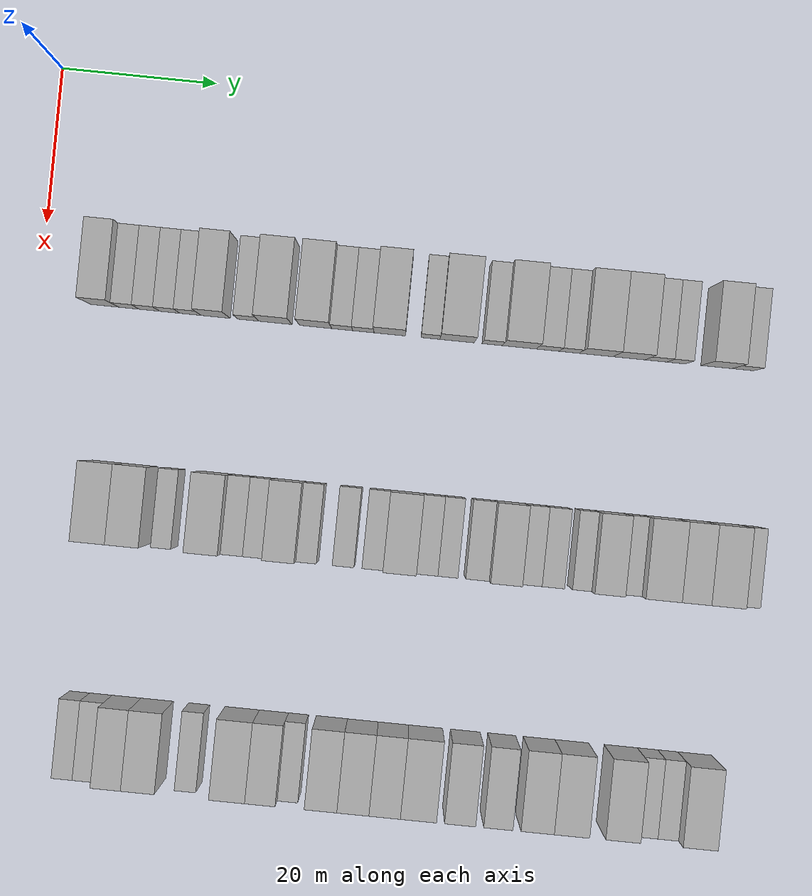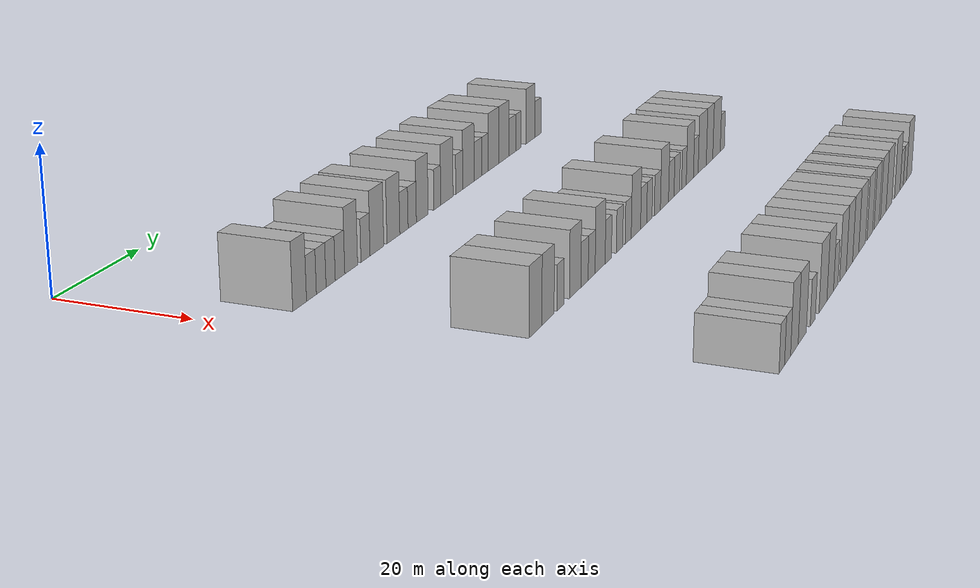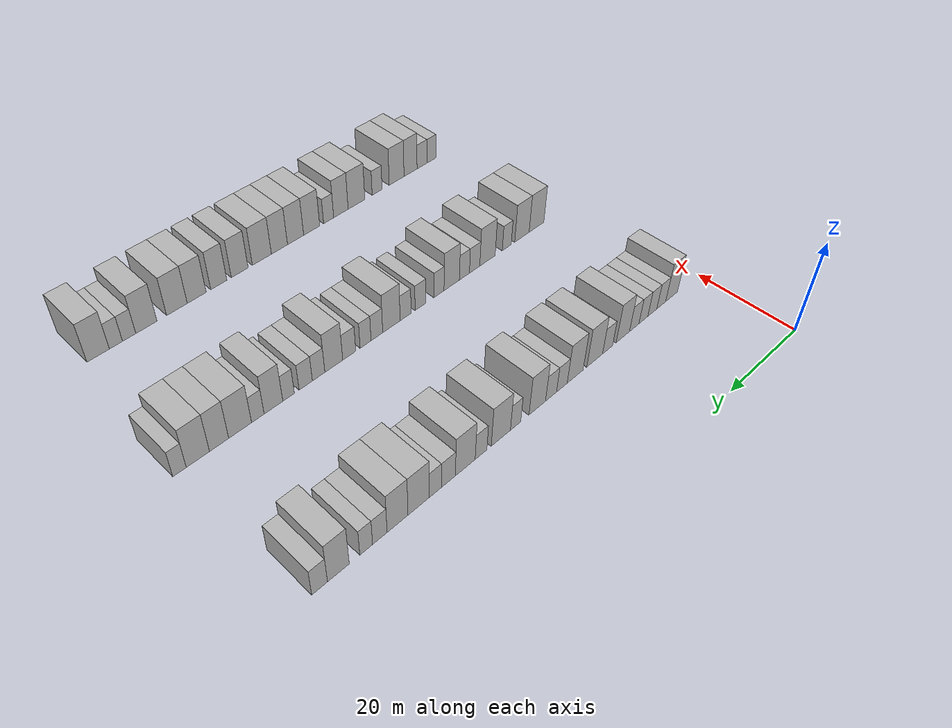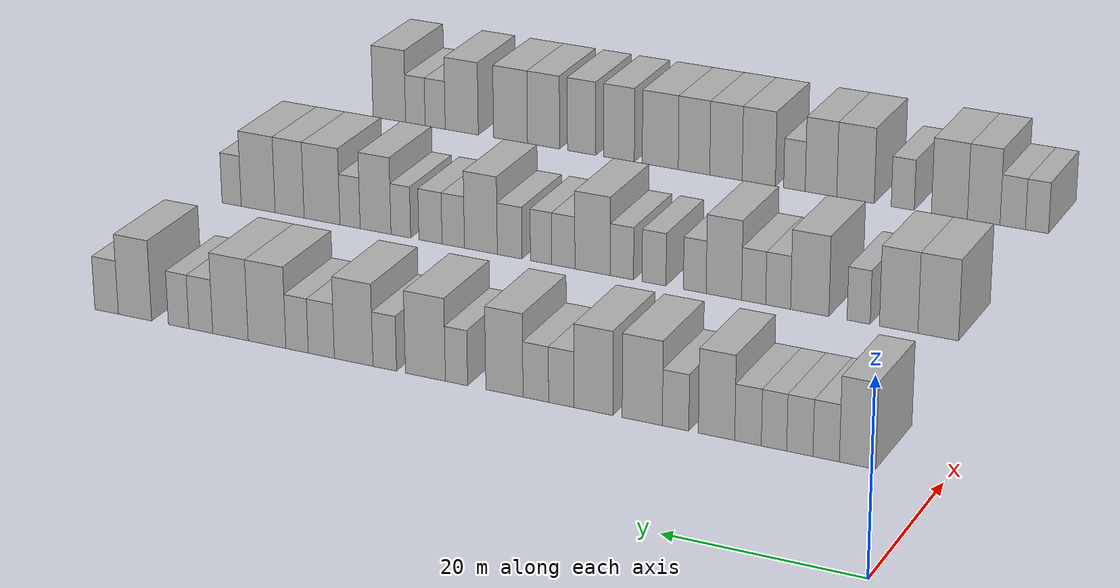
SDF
<sdf version="1.6">
 <world name="default">
  <model name="building_68">
   <static>1</static>
   <pose>25.0000 8.5379 0 0.000000 0.000000 0.000000</pose>
   <link name="link">
    <pose>0 0 4.50 0 0 0</pose>
    <collision name="collision"><geometry><box><size>10.0000 3.6507 9.0000</size></box></geometry></collision>
    <visual name="visual">
     <cast_shadows>0</cast_shadows>
     <geometry><box><size>10.0000 3.6507 9.0000</size></box></geometry>
     <material>
      <script>
       <uri>model://HANNAS_wall/materials/scripts</uri>
       <uri>model://HANNAS_wall/materials/textures</uri>
       <name>vrc/HANNAS_wall</name>
      </script>
     </material>
    </visual>
   </link>
  </model>
  <model name="building_69">
   <static>1</static>
   <pose>25.0000 11.6974 0 0.000000 0.000000 0.000000</pose>
   <link name="link">
    <pose>0 0 3.00 0 0 0</pose>
    <collision name="collision"><geometry><box><size>10.0000 2.6684 6.0000</size></box></geometry></collision>
    <visual name="visual">
     <cast_shadows>0</cast_shadows>
     <geometry><box><size>10.0000 2.6684 6.0000</size></box></geometry>
     <material>
      <script>
       <uri>model://HANNAS_wall/materials/scripts</uri>
       <uri>model://HANNAS_wall/materials/textures</uri>
       <name>vrc/HANNAS_wall</name>
      </script>
     </material>
    </visual>
   </link>
  </model>
  <model name="building_70">
   <static>1</static>
   <pose>25.0000 14.3689 0 0.000000 0.000000 0.000000</pose>
   <link name="link">
    <pose>0 0 3.00 0 0 0</pose>
    <collision name="collision"><geometry><box><size>10.0000 2.6747 6.0000</size></box></geometry></collision>
    <visual name="visual">
     <cast_shadows>0</cast_shadows>
     <geometry><box><size>10.0000 2.6747 6.0000</size></box></geometry>
     <material>
      <script>
       <uri>model://HANNAS_wall/materials/scripts</uri>
       <uri>model://HANNAS_wall/materials/textures</uri>
       <name>vrc/HANNAS_wall</name>
      </script>
     </material>
    </visual>
   </link>
  </model>
  <model name="building_71">
   <static>1</static>
   <pose>25.0000 17.0073 0 0.000000 0.000000 0.000000</pose>
   <link name="link">
    <pose>0 0 3.00 0 0 0</pose>
    <collision name="collision"><geometry><box><size>10.0000 2.6021 6.0000</size></box></geometry></collision>
    <visual name="visual">
     <cast_shadows>0</cast_shadows>
     <geometry><box><size>10.0000 2.6021 6.0000</size></box></geometry>
     <material>
      <script>
       <uri>model://HANNAS_wall/materials/scripts</uri>
       <uri>model://HANNAS_wall/materials/textures</uri>
       <name>vrc/HANNAS_wall</name>
      </script>
     </material>
    </visual>
   </link>
  </model>
  <model name="building_72">
   <static>1</static>
   <pose>25.0000 19.6736 0 0.000000 0.000000 0.000000</pose>
   <link name="link">
    <pose>0 0 3.00 0 0 0</pose>
    <collision name="collision"><geometry><box><size>10.0000 2.7305 6.0000</size></box></geometry></collision>
    <visual name="visual">
     <cast_shadows>0</cast_shadows>
     <geometry><box><size>10.0000 2.7305 6.0000</size></box></geometry>
     <material>
      <script>
       <uri>model://HANNAS_wall/materials/scripts</uri>
       <uri>model://HANNAS_wall/materials/textures</uri>
       <name>vrc/HANNAS_wall</name>
      </script>
     </material>
    </visual>
   </link>
  </model>
  <model name="building_73">
   <static>1</static>
   <pose>25.0000 22.9234 0 0.000000 0.000000 0.000000</pose>
   <link name="link">
    <pose>0 0 4.50 0 0 0</pose>
    <collision name="collision"><geometry><box><size>10.0000 3.7691 9.0000</size></box></geometry></collision>
    <visual name="visual">
     <cast_shadows>0</cast_shadows>
     <geometry><box><size>10.0000 3.7691 9.0000</size></box></geometry>
     <material>
      <script>
       <uri>model://HANNAS_wall/materials/scripts</uri>
       <uri>model://HANNAS_wall/materials/textures</uri>
       <name>vrc/HANNAS_wall</name>
      </script>
     </material>
    </visual>
   </link>
  </model>
  <model name="building_74">
   <static>1</static>
   <pose>25.0000 27.1916 0 0.000000 0.000000 0.000000</pose>
   <link name="link">
    <pose>0 0 3.00 0 0 0</pose>
    <collision name="collision"><geometry><box><size>10.0000 2.7673 6.0000</size></box></geometry></collision>
    <visual name="visual">
     <cast_shadows>0</cast_shadows>
     <geometry><box><size>10.0000 2.7673 6.0000</size></box></geometry>
     <material>
      <script>
       <uri>model://HANNAS_wall/materials/scripts</uri>
       <uri>model://HANNAS_wall/materials/textures</uri>
       <name>vrc/HANNAS_wall</name>
      </script>
     </material>
    </visual>
   </link>
  </model>
  <model name="building_75">
   <static>1</static>
   <pose>25.0000 30.7077 0 0.000000 0.000000 0.000000</pose>
   <link name="link">
    <pose>0 0 4.50 0 0 0</pose>
    <collision name="collision"><geometry><box><size>10.0000 4.2648 9.0000</size></box></geometry></collision>
    <visual name="visual">
     <cast_shadows>0</cast_shadows>
     <geometry><box><size>10.0000 4.2648 9.0000</size></box></geometry>
     <material>
      <script>
       <uri>model://HANNAS_wall/materials/scripts</uri>
       <uri>model://HANNAS_wall/materials/textures</uri>
       <name>vrc/HANNAS_wall</name>
      </script>
     </material>
    </visual>
   </link>
  </model>
  <model name="building_76">
   <static>1</static>
   <pose>25.0000 35.9200 0 0.000000 0.000000 0.000000</pose>
   <link name="link">
    <pose>0 0 4.50 0 0 0</pose>
    <collision name="collision"><geometry><box><size>10.0000 4.1600 9.0000</size></box></geometry></collision>
    <visual name="visual">
     <cast_shadows>0</cast_shadows>
     <geometry><box><size>10.0000 4.1600 9.0000</size></box></geometry>
     <material>
      <script>
       <uri>model://HANNAS_wall/materials/scripts</uri>
       <uri>model://HANNAS_wall/materials/textures</uri>
       <name>vrc/HANNAS_wall</name>
      </script>
     </material>
    </visual>
   </link>
  </model>
  <model name="building_77">
   <static>1</static>
   <pose>25.0000 39.3635 0 0.000000 0.000000 0.000000</pose>
   <link name="link">
    <pose>0 0 3.00 0 0 0</pose>
    <collision name="collision"><geometry><box><size>10.0000 2.7269 6.0000</size></box></geometry></collision>
    <visual name="visual">
     <cast_shadows>0</cast_shadows>
     <geometry><box><size>10.0000 2.7269 6.0000</size></box></geometry>
     <material>
      <script>
       <uri>model://HANNAS_wall/materials/scripts</uri>
       <uri>model://HANNAS_wall/materials/textures</uri>
       <name>vrc/HANNAS_wall</name>
      </script>
     </material>
    </visual>
   </link>
  </model>
  <model name="building_78">
   <static>1</static>
   <pose>25.0000 42.1148 0 0.000000 0.000000 0.000000</pose>
   <link name="link">
    <pose>0 0 3.00 0 0 0</pose>
    <collision name="collision"><geometry><box><size>10.0000 2.7756 6.0000</size></box></geometry></collision>
    <visual name="visual">
     <cast_shadows>0</cast_shadows>
     <geometry><box><size>10.0000 2.7756 6.0000</size></box></geometry>
     <material>
      <script>
       <uri>model://HANNAS_wall/materials/scripts</uri>
       <uri>model://HANNAS_wall/materials/textures</uri>
       <name>vrc/HANNAS_wall</name>
      </script>
     </material>
    </visual>
   </link>
  </model>
  <model name="building_79">
   <static>1</static>
   <pose>25.0000 45.5423 0 0.000000 0.000000 0.000000</pose>
   <link name="link">
    <pose>0 0 4.50 0 0 0</pose>
    <collision name="collision"><geometry><box><size>10.0000 4.0793 9.0000</size></box></geometry></collision>
    <visual name="visual">
     <cast_shadows>0</cast_shadows>
     <geometry><box><size>10.0000 4.0793 9.0000</size></box></geometry>
     <material>
      <script>
       <uri>model://HANNAS_wall/materials/scripts</uri>
       <uri>model://HANNAS_wall/materials/textures</uri>
       <name>vrc/HANNAS_wall</name>
      </script>
     </material>
    </visual>
   </link>
  </model>
  <model name="building_80">
   <static>1</static>
   <pose>25.0000 50.8127 0 0.000000 0.000000 0.000000</pose>
   <link name="link">
    <pose>0 0 3.00 0 0 0</pose>
    <collision name="collision"><geometry><box><size>10.0000 2.4616 6.0000</size></box></geometry></collision>
    <visual name="visual">
     <cast_shadows>0</cast_shadows>
     <geometry><box><size>10.0000 2.4616 6.0000</size></box></geometry>
     <material>
      <script>
       <uri>model://HANNAS_wall/materials/scripts</uri>
       <uri>model://HANNAS_wall/materials/textures</uri>
       <name>vrc/HANNAS_wall</name>
      </script>
     </material>
    </visual>
   </link>
  </model>
  <model name="building_81">
   <static>1</static>
   <pose>25.0000 54.2745 0 0.000000 0.000000 0.000000</pose>
   <link name="link">
    <pose>0 0 4.50 0 0 0</pose>
    <collision name="collision"><geometry><box><size>10.0000 4.4619 9.0000</size></box></geometry></collision>
    <visual name="visual">
     <cast_shadows>0</cast_shadows>
     <geometry><box><size>10.0000 4.4619 9.0000</size></box></geometry>
     <material>
      <script>
       <uri>model://HANNAS_wall/materials/scripts</uri>
       <uri>model://HANNAS_wall/materials/textures</uri>
       <name>vrc/HANNAS_wall</name>
      </script>
     </material>
    </visual>
   </link>
  </model>
  <model name="building_82">
   <static>1</static>
   <pose>25.0000 58.8342 0 0.000000 0.000000 0.000000</pose>
   <link name="link">
    <pose>0 0 3.00 0 0 0</pose>
    <collision name="collision"><geometry><box><size>10.0000 2.6576 6.0000</size></box></geometry></collision>
    <visual name="visual">
     <cast_shadows>0</cast_shadows>
     <geometry><box><size>10.0000 2.6576 6.0000</size></box></geometry>
     <material>
      <script>
       <uri>model://HANNAS_wall/materials/scripts</uri>
       <uri>model://HANNAS_wall/materials/textures</uri>
       <name>vrc/HANNAS_wall</name>
      </script>
     </material>
    </visual>
   </link>
  </model>
  <model name="building_83">
   <static>1</static>
   <pose>25.0000 62.3588 0 0.000000 0.000000 0.000000</pose>
   <link name="link">
    <pose>0 0 4.50 0 0 0</pose>
    <collision name="collision"><geometry><box><size>10.0000 4.3914 9.0000</size></box></geometry></collision>
    <visual name="visual">
     <cast_shadows>0</cast_shadows>
     <geometry><box><size>10.0000 4.3914 9.0000</size></box></geometry>
     <material>
      <script>
       <uri>model://HANNAS_wall/materials/scripts</uri>
       <uri>model://HANNAS_wall/materials/textures</uri>
       <name>vrc/HANNAS_wall</name>
      </script>
     </material>
    </visual>
   </link>
  </model>
  <model name="building_84">
   <static>1</static>
   <pose>25.0000 66.0514 0 0.000000 0.000000 0.000000</pose>
   <link name="link">
    <pose>0 0 3.00 0 0 0</pose>
    <collision name="collision"><geometry><box><size>10.0000 2.9938 6.0000</size></box></geometry></collision>
    <visual name="visual">
     <cast_shadows>0</cast_shadows>
     <geometry><box><size>10.0000 2.9938 6.0000</size></box></geometry>
     <material>
      <script>
       <uri>model://HANNAS_wall/materials/scripts</uri>
       <uri>model://HANNAS_wall/materials/textures</uri>
       <name>vrc/HANNAS_wall</name>
      </script>
     </material>
    </visual>
   </link>
  </model>
  <model name="building_85">
   <static>1</static>
   <pose>25.0000 68.8356 0 0.000000 0.000000 0.000000</pose>
   <link name="link">
    <pose>0 0 3.00 0 0 0</pose>
    <collision name="collision"><geometry><box><size>10.0000 2.5746 6.0000</size></box></geometry></collision>
    <visual name="visual">
     <cast_shadows>0</cast_shadows>
     <geometry><box><size>10.0000 2.5746 6.0000</size></box></geometry>
     <material>
      <script>
       <uri>model://HANNAS_wall/materials/scripts</uri>
       <uri>model://HANNAS_wall/materials/textures</uri>
       <name>vrc/HANNAS_wall</name>
      </script>
     </material>
    </visual>
   </link>
  </model>
  <model name="building_86">
   <static>1</static>
   <pose>25.0000 72.3199 0 0.000000 0.000000 0.000000</pose>
   <link name="link">
    <pose>0 0 4.50 0 0 0</pose>
    <collision name="collision"><geometry><box><size>10.0000 4.3940 9.0000</size></box></geometry></collision>
    <visual name="visual">
     <cast_shadows>0</cast_shadows>
     <geometry><box><size>10.0000 4.3940 9.0000</size></box></geometry>
     <material>
      <script>
       <uri>model://HANNAS_wall/materials/scripts</uri>
       <uri>model://HANNAS_wall/materials/textures</uri>
       <name>vrc/HANNAS_wall</name>
      </script>
     </material>
    </visual>
   </link>
  </model>
  <model name="building_87">
   <static>1</static>
   <pose>25.0000 76.5973 0 0.000000 0.000000 0.000000</pose>
   <link name="link">
    <pose>0 0 4.50 0 0 0</pose>
    <collision name="collision"><geometry><box><size>10.0000 4.1607 9.0000</size></box></geometry></collision>
    <visual name="visual">
     <cast_shadows>0</cast_shadows>
     <geometry><box><size>10.0000 4.1607 9.0000</size></box></geometry>
     <material>
      <script>
       <uri>model://HANNAS_wall/materials/scripts</uri>
       <uri>model://HANNAS_wall/materials/textures</uri>
       <name>vrc/HANNAS_wall</name>
      </script>
     </material>
    </visual>
   </link>
  </model>
  <model name="building_88">
   <static>1</static>
   <pose>25.0000 80.0898 0 0.000000 0.000000 0.000000</pose>
   <link name="link">
    <pose>0 0 3.00 0 0 0</pose>
    <collision name="collision"><geometry><box><size>10.0000 2.8244 6.0000</size></box></geometry></collision>
    <visual name="visual">
     <cast_shadows>0</cast_shadows>
     <geometry><box><size>10.0000 2.8244 6.0000</size></box></geometry>
     <material>
      <script>
       <uri>model://HANNAS_wall/materials/scripts</uri>
       <uri>model://HANNAS_wall/materials/textures</uri>
       <name>vrc/HANNAS_wall</name>
      </script>
     </material>
    </visual>
   </link>
  </model>
  <model name="building_89">
   <static>1</static>
   <pose>25.0000 82.7230 0 0.000000 0.000000 0.000000</pose>
   <link name="link">
    <pose>0 0 3.00 0 0 0</pose>
    <collision name="collision"><geometry><box><size>10.0000 2.4418 6.0000</size></box></geometry></collision>
    <visual name="visual">
     <cast_shadows>0</cast_shadows>
     <geometry><box><size>10.0000 2.4418 6.0000</size></box></geometry>
     <material>
      <script>
       <uri>model://HANNAS_wall/materials/scripts</uri>
       <uri>model://HANNAS_wall/materials/textures</uri>
       <name>vrc/HANNAS_wall</name>
      </script>
     </material>
    </visual>
   </link>
  </model>
  <model name="building_90">
   <static>1</static>
   <pose>25.0000 87.9460 0 0.000000 0.000000 0.000000</pose>
   <link name="link">
    <pose>0 0 4.50 0 0 0</pose>
    <collision name="collision"><geometry><box><size>10.0000 4.0042 9.0000</size></box></geometry></collision>
    <visual name="visual">
     <cast_shadows>0</cast_shadows>
     <geometry><box><size>10.0000 4.0042 9.0000</size></box></geometry>
     <material>
      <script>
       <uri>model://HANNAS_wall/materials/scripts</uri>
       <uri>model://HANNAS_wall/materials/textures</uri>
       <name>vrc/HANNAS_wall</name>
      </script>
     </material>
    </visual>
   </link>
  </model>
  <model name="building_91">
   <static>1</static>
   <pose>25.0000 91.3719 0 0.000000 0.000000 0.000000</pose>
   <link name="link">
    <pose>0 0 3.00 0 0 0</pose>
    <collision name="collision"><geometry><box><size>10.0000 2.8477 6.0000</size></box></geometry></collision>
    <visual name="visual">
     <cast_shadows>0</cast_shadows>
     <geometry><box><size>10.0000 2.8477 6.0000</size></box></geometry>
     <material>
      <script>
       <uri>model://HANNAS_wall/materials/scripts</uri>
       <uri>model://HANNAS_wall/materials/textures</uri>
       <name>vrc/HANNAS_wall</name>
      </script>
     </material>
    </visual>
   </link>
  </model>
  <model name="building_209">
   <static>1</static>
   <pose>55.0000 11.0766 0 0.000000 0.000000 0.000000</pose>
   <link name="link">
    <pose>0 0 4.50 0 0 0</pose>
    <collision name="collision"><geometry><box><size>10.0000 4.3739 9.0000</size></box></geometry></collision>
    <visual name="visual">
     <cast_shadows>0</cast_shadows>
     <geometry><box><size>10.0000 4.3739 9.0000</size></box></geometry>
     <material>
      <script>
       <uri>model://HANNAS_wall/materials/scripts</uri>
       <uri>model://HANNAS_wall/materials/textures</uri>
       <name>vrc/HANNAS_wall</name>
      </script>
     </material>
    </visual>
   </link>
  </model>
  <model name="building_210">
   <static>1</static>
   <pose>55.0000 15.3559 0 0.000000 0.000000 0.000000</pose>
   <link name="link">
    <pose>0 0 4.50 0 0 0</pose>
    <collision name="collision"><geometry><box><size>10.0000 4.1847 9.0000</size></box></geometry></collision>
    <visual name="visual">
     <cast_shadows>0</cast_shadows>
     <geometry><box><size>10.0000 4.1847 9.0000</size></box></geometry>
     <material>
      <script>
       <uri>model://HANNAS_wall/materials/scripts</uri>
       <uri>model://HANNAS_wall/materials/textures</uri>
       <name>vrc/HANNAS_wall</name>
      </script>
     </material>
    </visual>
   </link>
  </model>
  <model name="building_211">
   <static>1</static>
   <pose>55.0000 19.7180 0 0.000000 0.000000 0.000000</pose>
   <link name="link">
    <pose>0 0 3.00 0 0 0</pose>
    <collision name="collision"><geometry><box><size>10.0000 2.5397 6.0000</size></box></geometry></collision>
    <visual name="visual">
     <cast_shadows>0</cast_shadows>
     <geometry><box><size>10.0000 2.5397 6.0000</size></box></geometry>
     <material>
      <script>
       <uri>model://HANNAS_wall/materials/scripts</uri>
       <uri>model://HANNAS_wall/materials/textures</uri>
       <name>vrc/HANNAS_wall</name>
      </script>
     </material>
    </visual>
   </link>
  </model>
  <model name="building_212">
   <static>1</static>
   <pose>55.0000 25.1096 0 0.000000 0.000000 0.000000</pose>
   <link name="link">
    <pose>0 0 4.50 0 0 0</pose>
    <collision name="collision"><geometry><box><size>10.0000 4.2433 9.0000</size></box></geometry></collision>
    <visual name="visual">
     <cast_shadows>0</cast_shadows>
     <geometry><box><size>10.0000 4.2433 9.0000</size></box></geometry>
     <material>
      <script>
       <uri>model://HANNAS_wall/materials/scripts</uri>
       <uri>model://HANNAS_wall/materials/textures</uri>
       <name>vrc/HANNAS_wall</name>
      </script>
     </material>
    </visual>
   </link>
  </model>
  <model name="building_213">
   <static>1</static>
   <pose>55.0000 28.6270 0 0.000000 0.000000 0.000000</pose>
   <link name="link">
    <pose>0 0 3.00 0 0 0</pose>
    <collision name="collision"><geometry><box><size>10.0000 2.7914 6.0000</size></box></geometry></collision>
    <visual name="visual">
     <cast_shadows>0</cast_shadows>
     <geometry><box><size>10.0000 2.7914 6.0000</size></box></geometry>
     <material>
      <script>
       <uri>model://HANNAS_wall/materials/scripts</uri>
       <uri>model://HANNAS_wall/materials/textures</uri>
       <name>vrc/HANNAS_wall</name>
      </script>
     </material>
    </visual>
   </link>
  </model>
  <model name="building_214">
   <static>1</static>
   <pose>55.0000 31.3733 0 0.000000 0.000000 0.000000</pose>
   <link name="link">
    <pose>0 0 3.00 0 0 0</pose>
    <collision name="collision"><geometry><box><size>10.0000 2.7013 6.0000</size></box></geometry></collision>
    <visual name="visual">
     <cast_shadows>0</cast_shadows>
     <geometry><box><size>10.0000 2.7013 6.0000</size></box></geometry>
     <material>
      <script>
       <uri>model://HANNAS_wall/materials/scripts</uri>
       <uri>model://HANNAS_wall/materials/textures</uri>
       <name>vrc/HANNAS_wall</name>
      </script>
     </material>
    </visual>
   </link>
  </model>
  <model name="building_215">
   <static>1</static>
   <pose>55.0000 34.7276 0 0.000000 0.000000 0.000000</pose>
   <link name="link">
    <pose>0 0 4.50 0 0 0</pose>
    <collision name="collision"><geometry><box><size>10.0000 4.0073 9.0000</size></box></geometry></collision>
    <visual name="visual">
     <cast_shadows>0</cast_shadows>
     <geometry><box><size>10.0000 4.0073 9.0000</size></box></geometry>
     <material>
      <script>
       <uri>model://HANNAS_wall/materials/scripts</uri>
       <uri>model://HANNAS_wall/materials/textures</uri>
       <name>vrc/HANNAS_wall</name>
      </script>
     </material>
    </visual>
   </link>
  </model>
  <model name="building_216">
   <static>1</static>
   <pose>55.0000 38.0276 0 0.000000 0.000000 0.000000</pose>
   <link name="link">
    <pose>0 0 3.00 0 0 0</pose>
    <collision name="collision"><geometry><box><size>10.0000 2.5929 6.0000</size></box></geometry></collision>
    <visual name="visual">
     <cast_shadows>0</cast_shadows>
     <geometry><box><size>10.0000 2.5929 6.0000</size></box></geometry>
     <material>
      <script>
       <uri>model://HANNAS_wall/materials/scripts</uri>
       <uri>model://HANNAS_wall/materials/textures</uri>
       <name>vrc/HANNAS_wall</name>
      </script>
     </material>
    </visual>
   </link>
  </model>
  <model name="building_217">
   <static>1</static>
   <pose>55.0000 42.6906 0 0.000000 0.000000 0.000000</pose>
   <link name="link">
    <pose>0 0 3.00 0 0 0</pose>
    <collision name="collision"><geometry><box><size>10.0000 2.7331 6.0000</size></box></geometry></collision>
    <visual name="visual">
     <cast_shadows>0</cast_shadows>
     <geometry><box><size>10.0000 2.7331 6.0000</size></box></geometry>
     <material>
      <script>
       <uri>model://HANNAS_wall/materials/scripts</uri>
       <uri>model://HANNAS_wall/materials/textures</uri>
       <name>vrc/HANNAS_wall</name>
      </script>
     </material>
    </visual>
   </link>
  </model>
  <model name="building_218">
   <static>1</static>
   <pose>55.0000 46.3936 0 0.000000 0.000000 0.000000</pose>
   <link name="link">
    <pose>0 0 3.00 0 0 0</pose>
    <collision name="collision"><geometry><box><size>10.0000 2.6728 6.0000</size></box></geometry></collision>
    <visual name="visual">
     <cast_shadows>0</cast_shadows>
     <geometry><box><size>10.0000 2.6728 6.0000</size></box></geometry>
     <material>
      <script>
       <uri>model://HANNAS_wall/materials/scripts</uri>
       <uri>model://HANNAS_wall/materials/textures</uri>
       <name>vrc/HANNAS_wall</name>
      </script>
     </material>
    </visual>
   </link>
  </model>
  <model name="building_219">
   <static>1</static>
   <pose>55.0000 49.8131 0 0.000000 0.000000 0.000000</pose>
   <link name="link">
    <pose>0 0 4.50 0 0 0</pose>
    <collision name="collision"><geometry><box><size>10.0000 4.1662 9.0000</size></box></geometry></collision>
    <visual name="visual">
     <cast_shadows>0</cast_shadows>
     <geometry><box><size>10.0000 4.1662 9.0000</size></box></geometry>
     <material>
      <script>
       <uri>model://HANNAS_wall/materials/scripts</uri>
       <uri>model://HANNAS_wall/materials/textures</uri>
       <name>vrc/HANNAS_wall</name>
      </script>
     </material>
    </visual>
   </link>
  </model>
  <model name="building_220">
   <static>1</static>
   <pose>55.0000 53.2651 0 0.000000 0.000000 0.000000</pose>
   <link name="link">
    <pose>0 0 3.00 0 0 0</pose>
    <collision name="collision"><geometry><box><size>10.0000 2.7378 6.0000</size></box></geometry></collision>
    <visual name="visual">
     <cast_shadows>0</cast_shadows>
     <geometry><box><size>10.0000 2.7378 6.0000</size></box></geometry>
     <material>
      <script>
       <uri>model://HANNAS_wall/materials/scripts</uri>
       <uri>model://HANNAS_wall/materials/textures</uri>
       <name>vrc/HANNAS_wall</name>
      </script>
     </material>
    </visual>
   </link>
  </model>
  <model name="building_221">
   <static>1</static>
   <pose>55.0000 55.8947 0 0.000000 0.000000 0.000000</pose>
   <link name="link">
    <pose>0 0 3.00 0 0 0</pose>
    <collision name="collision"><geometry><box><size>10.0000 2.5213 6.0000</size></box></geometry></collision>
    <visual name="visual">
     <cast_shadows>0</cast_shadows>
     <geometry><box><size>10.0000 2.5213 6.0000</size></box></geometry>
     <material>
      <script>
       <uri>model://HANNAS_wall/materials/scripts</uri>
       <uri>model://HANNAS_wall/materials/textures</uri>
       <name>vrc/HANNAS_wall</name>
      </script>
     </material>
    </visual>
   </link>
  </model>
  <model name="building_222">
   <static>1</static>
   <pose>55.0000 59.6284 0 0.000000 0.000000 0.000000</pose>
   <link name="link">
    <pose>0 0 3.00 0 0 0</pose>
    <collision name="collision"><geometry><box><size>10.0000 2.9462 6.0000</size></box></geometry></collision>
    <visual name="visual">
     <cast_shadows>0</cast_shadows>
     <geometry><box><size>10.0000 2.9462 6.0000</size></box></geometry>
     <material>
      <script>
       <uri>model://HANNAS_wall/materials/scripts</uri>
       <uri>model://HANNAS_wall/materials/textures</uri>
       <name>vrc/HANNAS_wall</name>
      </script>
     </material>
    </visual>
   </link>
  </model>
  <model name="building_223">
   <static>1</static>
   <pose>55.0000 63.0762 0 0.000000 0.000000 0.000000</pose>
   <link name="link">
    <pose>0 0 4.50 0 0 0</pose>
    <collision name="collision"><geometry><box><size>10.0000 3.9493 9.0000</size></box></geometry></collision>
    <visual name="visual">
     <cast_shadows>0</cast_shadows>
     <geometry><box><size>10.0000 3.9493 9.0000</size></box></geometry>
     <material>
      <script>
       <uri>model://HANNAS_wall/materials/scripts</uri>
       <uri>model://HANNAS_wall/materials/textures</uri>
       <name>vrc/HANNAS_wall</name>
      </script>
     </material>
    </visual>
   </link>
  </model>
  <model name="building_224">
   <static>1</static>
   <pose>55.0000 66.4084 0 0.000000 0.000000 0.000000</pose>
   <link name="link">
    <pose>0 0 3.00 0 0 0</pose>
    <collision name="collision"><geometry><box><size>10.0000 2.7151 6.0000</size></box></geometry></collision>
    <visual name="visual">
     <cast_shadows>0</cast_shadows>
     <geometry><box><size>10.0000 2.7151 6.0000</size></box></geometry>
     <material>
      <script>
       <uri>model://HANNAS_wall/materials/scripts</uri>
       <uri>model://HANNAS_wall/materials/textures</uri>
       <name>vrc/HANNAS_wall</name>
      </script>
     </material>
    </visual>
   </link>
  </model>
  <model name="building_225">
   <static>1</static>
   <pose>55.0000 69.1788 0 0.000000 0.000000 0.000000</pose>
   <link name="link">
    <pose>0 0 3.00 0 0 0</pose>
    <collision name="collision"><geometry><box><size>10.0000 2.8258 6.0000</size></box></geometry></collision>
    <visual name="visual">
     <cast_shadows>0</cast_shadows>
     <geometry><box><size>10.0000 2.8258 6.0000</size></box></geometry>
     <material>
      <script>
       <uri>model://HANNAS_wall/materials/scripts</uri>
       <uri>model://HANNAS_wall/materials/textures</uri>
       <name>vrc/HANNAS_wall</name>
      </script>
     </material>
    </visual>
   </link>
  </model>
  <model name="building_226">
   <static>1</static>
   <pose>55.0000 72.7977 0 0.000000 0.000000 0.000000</pose>
   <link name="link">
    <pose>0 0 3.00 0 0 0</pose>
    <collision name="collision"><geometry><box><size>10.0000 2.4120 6.0000</size></box></geometry></collision>
    <visual name="visual">
     <cast_shadows>0</cast_shadows>
     <geometry><box><size>10.0000 2.4120 6.0000</size></box></geometry>
     <material>
      <script>
       <uri>model://HANNAS_wall/materials/scripts</uri>
       <uri>model://HANNAS_wall/materials/textures</uri>
       <name>vrc/HANNAS_wall</name>
      </script>
     </material>
    </visual>
   </link>
  </model>
  <model name="building_227">
   <static>1</static>
   <pose>55.0000 75.9086 0 0.000000 0.000000 0.000000</pose>
   <link name="link">
    <pose>0 0 4.50 0 0 0</pose>
    <collision name="collision"><geometry><box><size>10.0000 3.8098 9.0000</size></box></geometry></collision>
    <visual name="visual">
     <cast_shadows>0</cast_shadows>
     <geometry><box><size>10.0000 3.8098 9.0000</size></box></geometry>
     <material>
      <script>
       <uri>model://HANNAS_wall/materials/scripts</uri>
       <uri>model://HANNAS_wall/materials/textures</uri>
       <name>vrc/HANNAS_wall</name>
      </script>
     </material>
    </visual>
   </link>
  </model>
  <model name="building_228">
   <static>1</static>
   <pose>55.0000 79.0713 0 0.000000 0.000000 0.000000</pose>
   <link name="link">
    <pose>0 0 3.00 0 0 0</pose>
    <collision name="collision"><geometry><box><size>10.0000 2.5157 6.0000</size></box></geometry></collision>
    <visual name="visual">
     <cast_shadows>0</cast_shadows>
     <geometry><box><size>10.0000 2.5157 6.0000</size></box></geometry>
     <material>
      <script>
       <uri>model://HANNAS_wall/materials/scripts</uri>
       <uri>model://HANNAS_wall/materials/textures</uri>
       <name>vrc/HANNAS_wall</name>
      </script>
     </material>
    </visual>
   </link>
  </model>
  <model name="building_229">
   <static>1</static>
   <pose>55.0000 82.5705 0 0.000000 0.000000 0.000000</pose>
   <link name="link">
    <pose>0 0 4.50 0 0 0</pose>
    <collision name="collision"><geometry><box><size>10.0000 4.4828 9.0000</size></box></geometry></collision>
    <visual name="visual">
     <cast_shadows>0</cast_shadows>
     <geometry><box><size>10.0000 4.4828 9.0000</size></box></geometry>
     <material>
      <script>
       <uri>model://HANNAS_wall/materials/scripts</uri>
       <uri>model://HANNAS_wall/materials/textures</uri>
       <name>vrc/HANNAS_wall</name>
      </script>
     </material>
    </visual>
   </link>
  </model>
  <model name="building_230">
   <static>1</static>
   <pose>55.0000 86.6411 0 0.000000 0.000000 0.000000</pose>
   <link name="link">
    <pose>0 0 4.50 0 0 0</pose>
    <collision name="collision"><geometry><box><size>10.0000 3.6585 9.0000</size></box></geometry></collision>
    <visual name="visual">
     <cast_shadows>0</cast_shadows>
     <geometry><box><size>10.0000 3.6585 9.0000</size></box></geometry>
     <material>
      <script>
       <uri>model://HANNAS_wall/materials/scripts</uri>
       <uri>model://HANNAS_wall/materials/textures</uri>
       <name>vrc/HANNAS_wall</name>
      </script>
     </material>
    </visual>
   </link>
  </model>
  <model name="building_231">
   <static>1</static>
   <pose>55.0000 90.6314 0 0.000000 0.000000 0.000000</pose>
   <link name="link">
    <pose>0 0 4.50 0 0 0</pose>
    <collision name="collision"><geometry><box><size>10.0000 4.3220 9.0000</size></box></geometry></collision>
    <visual name="visual">
     <cast_shadows>0</cast_shadows>
     <geometry><box><size>10.0000 4.3220 9.0000</size></box></geometry>
     <material>
      <script>
       <uri>model://HANNAS_wall/materials/scripts</uri>
       <uri>model://HANNAS_wall/materials/textures</uri>
       <name>vrc/HANNAS_wall</name>
      </script>
     </material>
    </visual>
   </link>
  </model>
  <model name="building_232">
   <static>1</static>
   <pose>55.0000 94.0180 0 0.000000 0.000000 0.000000</pose>
   <link name="link">
    <pose>0 0 3.00 0 0 0</pose>
    <collision name="collision"><geometry><box><size>10.0000 2.4513 6.0000</size></box></geometry></collision>
    <visual name="visual">
     <cast_shadows>0</cast_shadows>
     <geometry><box><size>10.0000 2.4513 6.0000</size></box></geometry>
     <material>
      <script>
       <uri>model://HANNAS_wall/materials/scripts</uri>
       <uri>model://HANNAS_wall/materials/textures</uri>
       <name>vrc/HANNAS_wall</name>
      </script>
     </material>
    </visual>
   </link>
  </model>
  <model name="building_349">
   <static>1</static>
   <pose>85.0000 10.2678 0 0.000000 0.000000 0.000000</pose>
   <link name="link">
    <pose>0 0 3.00 0 0 0</pose>
    <collision name="collision"><geometry><box><size>10.0000 2.6398 6.0000</size></box></geometry></collision>
    <visual name="visual">
     <cast_shadows>0</cast_shadows>
     <geometry><box><size>10.0000 2.6398 6.0000</size></box></geometry>
     <material>
      <script>
       <uri>model://HANNAS_wall/materials/scripts</uri>
       <uri>model://HANNAS_wall/materials/textures</uri>
       <name>vrc/HANNAS_wall</name>
      </script>
     </material>
    </visual>
   </link>
  </model>
  <model name="building_350">
   <static>1</static>
   <pose>85.0000 13.0402 0 0.000000 0.000000 0.000000</pose>
   <link name="link">
    <pose>0 0 3.00 0 0 0</pose>
    <collision name="collision"><geometry><box><size>10.0000 2.9051 6.0000</size></box></geometry></collision>
    <visual name="visual">
     <cast_shadows>0</cast_shadows>
     <geometry><box><size>10.0000 2.9051 6.0000</size></box></geometry>
     <material>
      <script>
       <uri>model://HANNAS_wall/materials/scripts</uri>
       <uri>model://HANNAS_wall/materials/textures</uri>
       <name>vrc/HANNAS_wall</name>
      </script>
     </material>
    </visual>
   </link>
  </model>
  <model name="building_351">
   <static>1</static>
   <pose>85.0000 16.3734 0 0.000000 0.000000 0.000000</pose>
   <link name="link">
    <pose>0 0 4.50 0 0 0</pose>
    <collision name="collision"><geometry><box><size>10.0000 3.7612 9.0000</size></box></geometry></collision>
    <visual name="visual">
     <cast_shadows>0</cast_shadows>
     <geometry><box><size>10.0000 3.7612 9.0000</size></box></geometry>
     <material>
      <script>
       <uri>model://HANNAS_wall/materials/scripts</uri>
       <uri>model://HANNAS_wall/materials/textures</uri>
       <name>vrc/HANNAS_wall</name>
      </script>
     </material>
    </visual>
   </link>
  </model>
  <model name="building_352">
   <static>1</static>
   <pose>85.0000 20.3492 0 0.000000 0.000000 0.000000</pose>
   <link name="link">
    <pose>0 0 4.50 0 0 0</pose>
    <collision name="collision"><geometry><box><size>10.0000 4.1902 9.0000</size></box></geometry></collision>
    <visual name="visual">
     <cast_shadows>0</cast_shadows>
     <geometry><box><size>10.0000 4.1902 9.0000</size></box></geometry>
     <material>
      <script>
       <uri>model://HANNAS_wall/materials/scripts</uri>
       <uri>model://HANNAS_wall/materials/textures</uri>
       <name>vrc/HANNAS_wall</name>
      </script>
     </material>
    </visual>
   </link>
  </model>
  <model name="building_353">
   <static>1</static>
   <pose>85.0000 25.8020 0 0.000000 0.000000 0.000000</pose>
   <link name="link">
    <pose>0 0 3.00 0 0 0</pose>
    <collision name="collision"><geometry><box><size>10.0000 2.7155 6.0000</size></box></geometry></collision>
    <visual name="visual">
     <cast_shadows>0</cast_shadows>
     <geometry><box><size>10.0000 2.7155 6.0000</size></box></geometry>
     <material>
      <script>
       <uri>model://HANNAS_wall/materials/scripts</uri>
       <uri>model://HANNAS_wall/materials/textures</uri>
       <name>vrc/HANNAS_wall</name>
      </script>
     </material>
    </visual>
   </link>
  </model>
  <model name="building_354">
   <static>1</static>
   <pose>85.0000 31.3910 0 0.000000 0.000000 0.000000</pose>
   <link name="link">
    <pose>0 0 4.50 0 0 0</pose>
    <collision name="collision"><geometry><box><size>10.0000 4.4625 9.0000</size></box></geometry></collision>
    <visual name="visual">
     <cast_shadows>0</cast_shadows>
     <geometry><box><size>10.0000 4.4625 9.0000</size></box></geometry>
     <material>
      <script>
       <uri>model://HANNAS_wall/materials/scripts</uri>
       <uri>model://HANNAS_wall/materials/textures</uri>
       <name>vrc/HANNAS_wall</name>
      </script>
     </material>
    </visual>
   </link>
  </model>
  <model name="building_355">
   <static>1</static>
   <pose>85.0000 35.5150 0 0.000000 0.000000 0.000000</pose>
   <link name="link">
    <pose>0 0 4.50 0 0 0</pose>
    <collision name="collision"><geometry><box><size>10.0000 3.7854 9.0000</size></box></geometry></collision>
    <visual name="visual">
     <cast_shadows>0</cast_shadows>
     <geometry><box><size>10.0000 3.7854 9.0000</size></box></geometry>
     <material>
      <script>
       <uri>model://HANNAS_wall/materials/scripts</uri>
       <uri>model://HANNAS_wall/materials/textures</uri>
       <name>vrc/HANNAS_wall</name>
      </script>
     </material>
    </visual>
   </link>
  </model>
  <model name="building_356">
   <static>1</static>
   <pose>85.0000 38.7044 0 0.000000 0.000000 0.000000</pose>
   <link name="link">
    <pose>0 0 3.00 0 0 0</pose>
    <collision name="collision"><geometry><box><size>10.0000 2.5934 6.0000</size></box></geometry></collision>
    <visual name="visual">
     <cast_shadows>0</cast_shadows>
     <geometry><box><size>10.0000 2.5934 6.0000</size></box></geometry>
     <material>
      <script>
       <uri>model://HANNAS_wall/materials/scripts</uri>
       <uri>model://HANNAS_wall/materials/textures</uri>
       <name>vrc/HANNAS_wall</name>
      </script>
     </material>
    </visual>
   </link>
  </model>
  <model name="building_357">
   <static>1</static>
   <pose>85.0000 43.0244 0 0.000000 0.000000 0.000000</pose>
   <link name="link">
    <pose>0 0 4.50 0 0 0</pose>
    <collision name="collision"><geometry><box><size>10.0000 4.0467 9.0000</size></box></geometry></collision>
    <visual name="visual">
     <cast_shadows>0</cast_shadows>
     <geometry><box><size>10.0000 4.0467 9.0000</size></box></geometry>
     <material>
      <script>
       <uri>model://HANNAS_wall/materials/scripts</uri>
       <uri>model://HANNAS_wall/materials/textures</uri>
       <name>vrc/HANNAS_wall</name>
      </script>
     </material>
    </visual>
   </link>
  </model>
  <model name="building_358">
   <static>1</static>
   <pose>85.0000 47.0342 0 0.000000 0.000000 0.000000</pose>
   <link name="link">
    <pose>0 0 4.50 0 0 0</pose>
    <collision name="collision"><geometry><box><size>10.0000 3.9727 9.0000</size></box></geometry></collision>
    <visual name="visual">
     <cast_shadows>0</cast_shadows>
     <geometry><box><size>10.0000 3.9727 9.0000</size></box></geometry>
     <material>
      <script>
       <uri>model://HANNAS_wall/materials/scripts</uri>
       <uri>model://HANNAS_wall/materials/textures</uri>
       <name>vrc/HANNAS_wall</name>
      </script>
     </material>
    </visual>
   </link>
  </model>
  <model name="building_359">
   <static>1</static>
   <pose>85.0000 50.9681 0 0.000000 0.000000 0.000000</pose>
   <link name="link">
    <pose>0 0 4.50 0 0 0</pose>
    <collision name="collision"><geometry><box><size>10.0000 3.8951 9.0000</size></box></geometry></collision>
    <visual name="visual">
     <cast_shadows>0</cast_shadows>
     <geometry><box><size>10.0000 3.8951 9.0000</size></box></geometry>
     <material>
      <script>
       <uri>model://HANNAS_wall/materials/scripts</uri>
       <uri>model://HANNAS_wall/materials/textures</uri>
       <name>vrc/HANNAS_wall</name>
      </script>
     </material>
    </visual>
   </link>
  </model>
  <model name="building_360">
   <static>1</static>
   <pose>85.0000 55.1567 0 0.000000 0.000000 0.000000</pose>
   <link name="link">
    <pose>0 0 4.50 0 0 0</pose>
    <collision name="collision"><geometry><box><size>10.0000 4.4823 9.0000</size></box></geometry></collision>
    <visual name="visual">
     <cast_shadows>0</cast_shadows>
     <geometry><box><size>10.0000 4.4823 9.0000</size></box></geometry>
     <material>
      <script>
       <uri>model://HANNAS_wall/materials/scripts</uri>
       <uri>model://HANNAS_wall/materials/textures</uri>
       <name>vrc/HANNAS_wall</name>
      </script>
     </material>
    </visual>
   </link>
  </model>
  <model name="building_361">
   <static>1</static>
   <pose>85.0000 60.3260 0 0.000000 0.000000 0.000000</pose>
   <link name="link">
    <pose>0 0 4.50 0 0 0</pose>
    <collision name="collision"><geometry><box><size>10.0000 3.8562 9.0000</size></box></geometry></collision>
    <visual name="visual">
     <cast_shadows>0</cast_shadows>
     <geometry><box><size>10.0000 3.8562 9.0000</size></box></geometry>
     <material>
      <script>
       <uri>model://HANNAS_wall/materials/scripts</uri>
       <uri>model://HANNAS_wall/materials/textures</uri>
       <name>vrc/HANNAS_wall</name>
      </script>
     </material>
    </visual>
   </link>
  </model>
  <model name="building_362">
   <static>1</static>
   <pose>85.0000 65.0585 0 0.000000 0.000000 0.000000</pose>
   <link name="link">
    <pose>0 0 4.50 0 0 0</pose>
    <collision name="collision"><geometry><box><size>10.0000 3.6090 9.0000</size></box></geometry></collision>
    <visual name="visual">
     <cast_shadows>0</cast_shadows>
     <geometry><box><size>10.0000 3.6090 9.0000</size></box></geometry>
     <material>
      <script>
       <uri>model://HANNAS_wall/materials/scripts</uri>
       <uri>model://HANNAS_wall/materials/textures</uri>
       <name>vrc/HANNAS_wall</name>
      </script>
     </material>
    </visual>
   </link>
  </model>
  <model name="building_363">
   <static>1</static>
   <pose>85.0000 69.9220 0 0.000000 0.000000 0.000000</pose>
   <link name="link">
    <pose>0 0 4.50 0 0 0</pose>
    <collision name="collision"><geometry><box><size>10.0000 4.1180 9.0000</size></box></geometry></collision>
    <visual name="visual">
     <cast_shadows>0</cast_shadows>
     <geometry><box><size>10.0000 4.1180 9.0000</size></box></geometry>
     <material>
      <script>
       <uri>model://HANNAS_wall/materials/scripts</uri>
       <uri>model://HANNAS_wall/materials/textures</uri>
       <name>vrc/HANNAS_wall</name>
      </script>
     </material>
    </visual>
   </link>
  </model>
  <model name="building_364">
   <static>1</static>
   <pose>85.0000 74.1716 0 0.000000 0.000000 0.000000</pose>
   <link name="link">
    <pose>0 0 4.50 0 0 0</pose>
    <collision name="collision"><geometry><box><size>10.0000 4.3812 9.0000</size></box></geometry></collision>
    <visual name="visual">
     <cast_shadows>0</cast_shadows>
     <geometry><box><size>10.0000 4.3812 9.0000</size></box></geometry>
     <material>
      <script>
       <uri>model://HANNAS_wall/materials/scripts</uri>
       <uri>model://HANNAS_wall/materials/textures</uri>
       <name>vrc/HANNAS_wall</name>
      </script>
     </material>
    </visual>
   </link>
  </model>
  <model name="building_365">
   <static>1</static>
   <pose>85.0000 80.5284 0 0.000000 0.000000 0.000000</pose>
   <link name="link">
    <pose>0 0 4.50 0 0 0</pose>
    <collision name="collision"><geometry><box><size>10.0000 4.3324 9.0000</size></box></geometry></collision>
    <visual name="visual">
     <cast_shadows>0</cast_shadows>
     <geometry><box><size>10.0000 4.3324 9.0000</size></box></geometry>
     <material>
      <script>
       <uri>model://HANNAS_wall/materials/scripts</uri>
       <uri>model://HANNAS_wall/materials/textures</uri>
       <name>vrc/HANNAS_wall</name>
      </script>
     </material>
    </visual>
   </link>
  </model>
  <model name="building_366">
   <static>1</static>
   <pose>85.0000 84.0189 0 0.000000 0.000000 0.000000</pose>
   <link name="link">
    <pose>0 0 3.00 0 0 0</pose>
    <collision name="collision"><geometry><box><size>10.0000 2.6486 6.0000</size></box></geometry></collision>
    <visual name="visual">
     <cast_shadows>0</cast_shadows>
     <geometry><box><size>10.0000 2.6486 6.0000</size></box></geometry>
     <material>
      <script>
       <uri>model://HANNAS_wall/materials/scripts</uri>
       <uri>model://HANNAS_wall/materials/textures</uri>
       <name>vrc/HANNAS_wall</name>
      </script>
     </material>
    </visual>
   </link>
  </model>
  <model name="building_367">
   <static>1</static>
   <pose>85.0000 86.6391 0 0.000000 0.000000 0.000000</pose>
   <link name="link">
    <pose>0 0 3.00 0 0 0</pose>
    <collision name="collision"><geometry><box><size>10.0000 2.5918 6.0000</size></box></geometry></collision>
    <visual name="visual">
     <cast_shadows>0</cast_shadows>
     <geometry><box><size>10.0000 2.5918 6.0000</size></box></geometry>
     <material>
      <script>
       <uri>model://HANNAS_wall/materials/scripts</uri>
       <uri>model://HANNAS_wall/materials/textures</uri>
       <name>vrc/HANNAS_wall</name>
      </script>
     </material>
    </visual>
   </link>
  </model>
  <model name="building_368">
   <static>1</static>
   <pose>85.0000 90.1078 0 0.000000 0.000000 0.000000</pose>
   <link name="link">
    <pose>0 0 4.50 0 0 0</pose>
    <collision name="collision"><geometry><box><size>10.0000 4.3455 9.0000</size></box></geometry></collision>
    <visual name="visual">
     <cast_shadows>0</cast_shadows>
     <geometry><box><size>10.0000 4.3455 9.0000</size></box></geometry>
     <material>
      <script>
       <uri>model://HANNAS_wall/materials/scripts</uri>
       <uri>model://HANNAS_wall/materials/textures</uri>
       <name>vrc/HANNAS_wall</name>
      </script>
     </material>
    </visual>
   </link>
  </model>
 </world>
</sdf>
